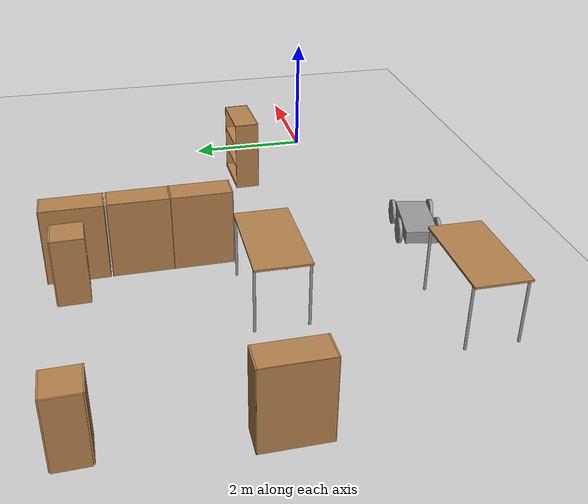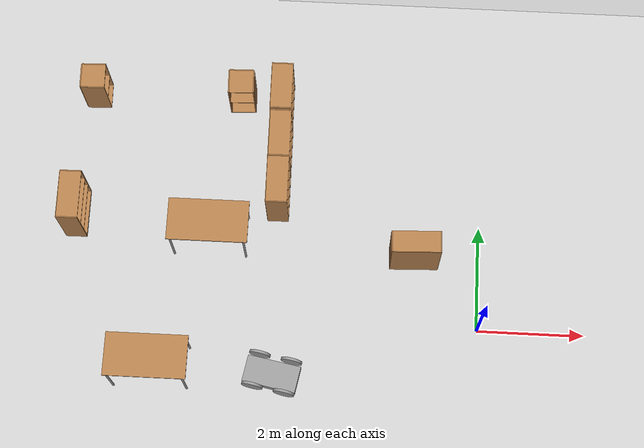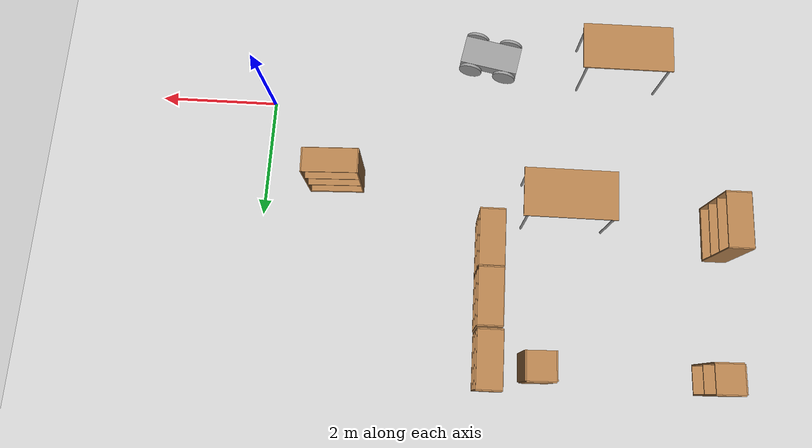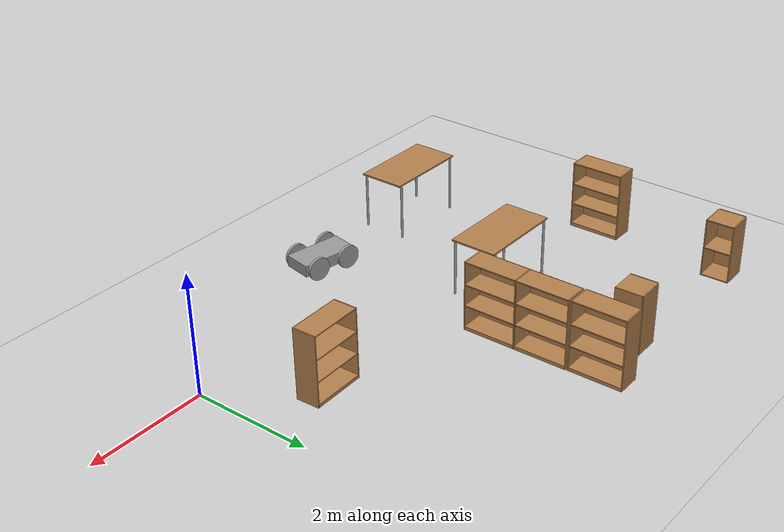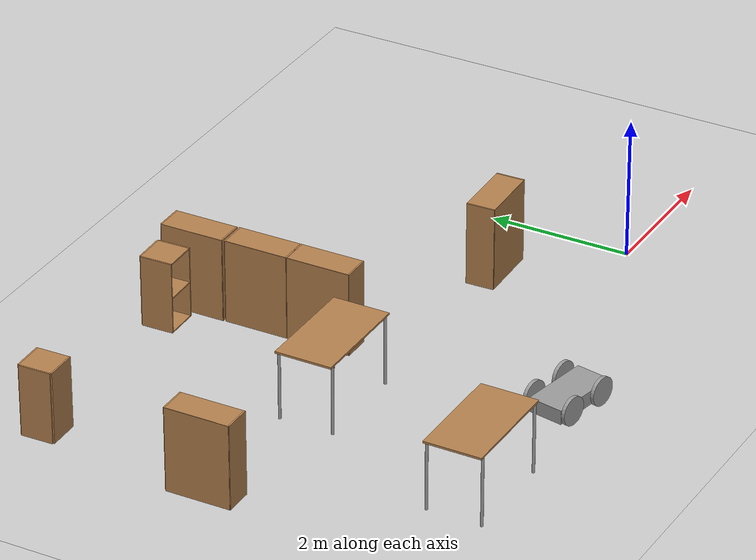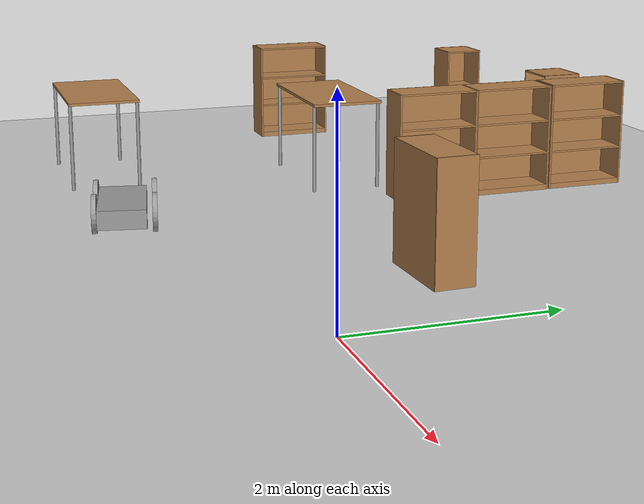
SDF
<sdf version="1.6">
 <world name="default">
  <model name="ground_plane">
   <static>1</static>
   <link name="link">
    <collision name="collision">
     <geometry><plane><normal>0 0 1</normal><size>100 100</size></plane></geometry>
     <surface>
      <contact><collide_bitmask>65535</collide_bitmask></contact>
      <friction><ode><mu>100</mu><mu2>50</mu2></ode></friction>
     </surface>
    </collision>
    <visual name="visual">
     <cast_shadows>0</cast_shadows>
     <geometry><plane><normal>0 0 1</normal><size>100 100</size></plane></geometry>
     <material>
      <script><uri>file://media/materials/scripts/gazebo.material</uri><name>Gazebo/Grey</name></script>
     </material>
    </visual>
   </link>
  </model>
  <model name="FourWheelRobot">
   <link name="link_0">
    <pose>-0 -0 -0.015999 0 -0 0</pose>
    <inertial>
     <mass>1</mass>
     <inertia>
      <ixx>0.166667</ixx>
      <ixy>0</ixy>
      <ixz>0</ixz>
      <iyy>0.166667</iyy>
      <iyz>0</iyz>
      <izz>0.166667</izz>
     </inertia>
    </inertial>
    <visual name="visual">
     <geometry><box><size>1 0.5 0.2</size></box></geometry>
     <material>
      <lighting>1</lighting>
      <script><uri>file://media/materials/scripts/gazebo.material</uri><name>Gazebo/Grey</name></script>
      <shader type="pixel"><normal_map>__default__</normal_map></shader>
      <ambient>0.3 0.3 0.3 1</ambient>
      <diffuse>0.7 0.7 0.7 1</diffuse>
      <specular>0.01 0.01 0.01 1</specular>
      <emissive>0 0 0 1</emissive>
     </material>
    </visual>
    <collision name="collision">
     <geometry><box><size>1 0.5 0.2</size></box></geometry>
     <surface>
      <friction>
       <ode><mu>1</mu><mu2>1</mu2><fdir1>0 0 0</fdir1><slip1>0</slip1><slip2>0</slip2></ode>
       <torsional>
        <coefficient>1</coefficient>
        <patch_radius>0</patch_radius>
        <surface_radius>0</surface_radius>
        <use_patch_radius>1</use_patch_radius>
        <ode><slip>0</slip></ode>
       </torsional>
      </friction>
      <bounce><restitution_coefficient>0</restitution_coefficient><threshold>1e+06</threshold></bounce>
      <contact>
       <collide_without_contact>0</collide_without_contact>
       <collide_without_contact_bitmask>1</collide_without_contact_bitmask>
       <collide_bitmask>1</collide_bitmask>
       <ode>
        <soft_cfm>0</soft_cfm>
        <soft_erp>0.2</soft_erp>
        <kp>1e+13</kp>
        <kd>1</kd>
        <max_vel>0.01</max_vel>
        <min_depth>0</min_depth>
       </ode>
       <bullet>
        <split_impulse>1</split_impulse>
        <split_impulse_penetration_threshold>-0.01</split_impulse_penetration_threshold>
        <soft_cfm>0</soft_cfm>
        <soft_erp>0.2</soft_erp>
        <kp>1e+13</kp>
        <kd>1</kd>
       </bullet>
      </contact>
     </surface>
    </collision>
   </link>
   <link name="link_1">
    <pose>-0.299779 -0.277085 0.003993 1.5707 -0 0</pose>
    <inertial>
     <mass>1</mass>
     <inertia><ixx>0.145833</ixx><ixy>0</ixy><ixz>0</ixz><iyy>0.145833</iyy><iyz>0</iyz><izz>0.125</izz></inertia>
    </inertial>
    <visual name="visual">
     <geometry><cylinder><radius>0.2</radius><length>0.05</length></cylinder></geometry>
     <material>
      <lighting>1</lighting>
      <script><uri>file://media/materials/scripts/gazebo.material</uri><name>Gazebo/Grey</name></script>
      <shader type="pixel"><normal_map>__default__</normal_map></shader>
      <ambient>0.3 0.3 0.3 1</ambient>
      <diffuse>0.7 0.7 0.7 1</diffuse>
      <specular>0.01 0.01 0.01 1</specular>
      <emissive>0 0 0 1</emissive>
     </material>
    </visual>
    <collision name="collision">
     <geometry><cylinder><radius>0.2</radius><length>0.05</length></cylinder></geometry>
     <surface>
      <friction>
       <ode><mu>1</mu><mu2>1</mu2><fdir1>0 0 0</fdir1><slip1>0</slip1><slip2>0</slip2></ode>
       <torsional>
        <coefficient>1</coefficient>
        <patch_radius>0</patch_radius>
        <surface_radius>0</surface_radius>
        <use_patch_radius>1</use_patch_radius>
        <ode><slip>0</slip></ode>
       </torsional>
      </friction>
      <bounce><restitution_coefficient>0</restitution_coefficient><threshold>1e+06</threshold></bounce>
      <contact>
       <collide_without_contact>0</collide_without_contact>
       <collide_without_contact_bitmask>1</collide_without_contact_bitmask>
       <collide_bitmask>1</collide_bitmask>
       <ode>
        <soft_cfm>0</soft_cfm>
        <soft_erp>0.2</soft_erp>
        <kp>1e+13</kp>
        <kd>1</kd>
        <max_vel>0.01</max_vel>
        <min_depth>0</min_depth>
       </ode>
       <bullet>
        <split_impulse>1</split_impulse>
        <split_impulse_penetration_threshold>-0.01</split_impulse_penetration_threshold>
        <soft_cfm>0</soft_cfm>
        <soft_erp>0.2</soft_erp>
        <kp>1e+13</kp>
        <kd>1</kd>
       </bullet>
      </contact>
     </surface>
    </collision>
   </link>
   <link name="link_1_clone">
    <pose>0.301033 -0.275844 0.004001 1.5707 -0 0</pose>
    <inertial>
     <mass>1</mass>
     <inertia><ixx>0.145833</ixx><ixy>0</ixy><ixz>0</ixz><iyy>0.145833</iyy><iyz>0</iyz><izz>0.125</izz></inertia>
    </inertial>
    <visual name="visual">
     <geometry><cylinder><radius>0.2</radius><length>0.05</length></cylinder></geometry>
     <material>
      <lighting>1</lighting>
      <script><uri>file://media/materials/scripts/gazebo.material</uri><name>Gazebo/Grey</name></script>
      <shader type="pixel"><normal_map>__default__</normal_map></shader>
      <ambient>0.3 0.3 0.3 1</ambient>
      <diffuse>0.7 0.7 0.7 1</diffuse>
      <specular>0.01 0.01 0.01 1</specular>
      <emissive>0 0 0 1</emissive>
     </material>
    </visual>
    <collision name="collision">
     <geometry><cylinder><radius>0.2</radius><length>0.05</length></cylinder></geometry>
     <surface>
      <friction>
       <ode><mu>1</mu><mu2>1</mu2><fdir1>0 0 0</fdir1><slip1>0</slip1><slip2>0</slip2></ode>
       <torsional>
        <coefficient>1</coefficient>
        <patch_radius>0</patch_radius>
        <surface_radius>0</surface_radius>
        <use_patch_radius>1</use_patch_radius>
        <ode><slip>0</slip></ode>
       </torsional>
      </friction>
      <bounce><restitution_coefficient>0</restitution_coefficient><threshold>1e+06</threshold></bounce>
      <contact>
       <collide_without_contact>0</collide_without_contact>
       <collide_without_contact_bitmask>1</collide_without_contact_bitmask>
       <collide_bitmask>1</collide_bitmask>
       <ode>
        <soft_cfm>0</soft_cfm>
        <soft_erp>0.2</soft_erp>
        <kp>1e+13</kp>
        <kd>1</kd>
        <max_vel>0.01</max_vel>
        <min_depth>0</min_depth>
       </ode>
       <bullet>
        <split_impulse>1</split_impulse>
        <split_impulse_penetration_threshold>-0.01</split_impulse_penetration_threshold>
        <soft_cfm>0</soft_cfm>
        <soft_erp>0.2</soft_erp>
        <kp>1e+13</kp>
        <kd>1</kd>
       </bullet>
      </contact>
     </surface>
    </collision>
   </link>
   <link name="link_1_clone_0">
    <pose>-0.301033 0.330349 0.003996 1.5707 -0 0</pose>
    <inertial>
     <mass>1</mass>
     <inertia><ixx>0.145833</ixx><ixy>0</ixy><ixz>0</ixz><iyy>0.145833</iyy><iyz>0</iyz><izz>0.125</izz></inertia>
    </inertial>
    <visual name="visual">
     <geometry><cylinder><radius>0.2</radius><length>0.05</length></cylinder></geometry>
     <material>
      <lighting>1</lighting>
      <script><uri>file://media/materials/scripts/gazebo.material</uri><name>Gazebo/Grey</name></script>
      <shader type="pixel"><normal_map>__default__</normal_map></shader>
      <ambient>0.3 0.3 0.3 1</ambient>
      <diffuse>0.7 0.7 0.7 1</diffuse>
      <specular>0.01 0.01 0.01 1</specular>
      <emissive>0 0 0 1</emissive>
     </material>
    </visual>
    <collision name="collision">
     <geometry><cylinder><radius>0.2</radius><length>0.05</length></cylinder></geometry>
     <surface>
      <friction>
       <ode><mu>1</mu><mu2>1</mu2><fdir1>0 0 0</fdir1><slip1>0</slip1><slip2>0</slip2></ode>
       <torsional>
        <coefficient>1</coefficient>
        <patch_radius>0</patch_radius>
        <surface_radius>0</surface_radius>
        <use_patch_radius>1</use_patch_radius>
        <ode><slip>0</slip></ode>
       </torsional>
      </friction>
      <bounce><restitution_coefficient>0</restitution_coefficient><threshold>1e+06</threshold></bounce>
      <contact>
       <collide_without_contact>0</collide_without_contact>
       <collide_without_contact_bitmask>1</collide_without_contact_bitmask>
       <collide_bitmask>1</collide_bitmask>
       <ode>
        <soft_cfm>0</soft_cfm>
        <soft_erp>0.2</soft_erp>
        <kp>1e+13</kp>
        <kd>1</kd>
        <max_vel>0.01</max_vel>
        <min_depth>0</min_depth>
       </ode>
       <bullet>
        <split_impulse>1</split_impulse>
        <split_impulse_penetration_threshold>-0.01</split_impulse_penetration_threshold>
        <soft_cfm>0</soft_cfm>
        <soft_erp>0.2</soft_erp>
        <kp>1e+13</kp>
        <kd>1</kd>
       </bullet>
      </contact>
     </surface>
    </collision>
   </link>
   <link name="link_1_clone_1">
    <pose>0.299779 0.331589 0.004003 1.5707 -0 0</pose>
    <inertial>
     <mass>1</mass>
     <inertia><ixx>0.145833</ixx><ixy>0</ixy><ixz>0</ixz><iyy>0.145833</iyy><iyz>0</iyz><izz>0.125</izz></inertia>
    </inertial>
    <visual name="visual">
     <geometry><cylinder><radius>0.2</radius><length>0.05</length></cylinder></geometry>
     <material>
      <lighting>1</lighting>
      <script><uri>file://media/materials/scripts/gazebo.material</uri><name>Gazebo/Grey</name></script>
      <shader type="pixel"><normal_map>__default__</normal_map></shader>
      <ambient>0.3 0.3 0.3 1</ambient>
      <diffuse>0.7 0.7 0.7 1</diffuse>
      <specular>0.01 0.01 0.01 1</specular>
      <emissive>0 0 0 1</emissive>
     </material>
    </visual>
    <collision name="collision">
     <geometry><cylinder><radius>0.2</radius><length>0.05</length></cylinder></geometry>
     <surface>
      <friction>
       <ode><mu>1</mu><mu2>1</mu2><fdir1>0 0 0</fdir1><slip1>0</slip1><slip2>0</slip2></ode>
       <torsional>
        <coefficient>1</coefficient>
        <patch_radius>0</patch_radius>
        <surface_radius>0</surface_radius>
        <use_patch_radius>1</use_patch_radius>
        <ode><slip>0</slip></ode>
       </torsional>
      </friction>
      <bounce><restitution_coefficient>0</restitution_coefficient><threshold>1e+06</threshold></bounce>
      <contact>
       <collide_without_contact>0</collide_without_contact>
       <collide_without_contact_bitmask>1</collide_without_contact_bitmask>
       <collide_bitmask>1</collide_bitmask>
       <ode>
        <soft_cfm>0</soft_cfm>
        <soft_erp>0.2</soft_erp>
        <kp>1e+13</kp>
        <kd>1</kd>
        <max_vel>0.01</max_vel>
        <min_depth>0</min_depth>
       </ode>
       <bullet>
        <split_impulse>1</split_impulse>
        <split_impulse_penetration_threshold>-0.01</split_impulse_penetration_threshold>
        <soft_cfm>0</soft_cfm>
        <soft_erp>0.2</soft_erp>
        <kp>1e+13</kp>
        <kd>1</kd>
       </bullet>
      </contact>
     </surface>
    </collision>
   </link>
   <joint name="link_0_JOINT_0" type="revolute">
    <parent>link_0</parent>
    <child>link_1</child>
    <axis>
     <xyz>0 0 1</xyz>
     <use_parent_model_frame>0</use_parent_model_frame>
     <limit>
      <lower>-1.79769e+308</lower>
      <upper>1.79769e+308</upper>
      <effort>-1</effort>
      <velocity>-1</velocity>
     </limit>
     <dynamics>
      <spring_reference>0</spring_reference>
      <spring_stiffness>0</spring_stiffness>
      <damping>0</damping>
     </dynamics>
    </axis>
    <physics>
     <ode><limit><cfm>0</cfm><erp>0.2</erp></limit><suspension><cfm>0</cfm><erp>0.2</erp></suspension></ode>
    </physics>
   </joint>
   <joint name="link_0_JOINT_1" type="revolute">
    <parent>link_0</parent>
    <child>link_1_clone</child>
    <axis>
     <xyz>0 0 1</xyz>
     <use_parent_model_frame>0</use_parent_model_frame>
     <limit>
      <lower>-1.79769e+308</lower>
      <upper>1.79769e+308</upper>
      <effort>-1</effort>
      <velocity>-1</velocity>
     </limit>
     <dynamics>
      <spring_reference>0</spring_reference>
      <spring_stiffness>0</spring_stiffness>
      <damping>0</damping>
     </dynamics>
    </axis>
    <physics>
     <ode><limit><cfm>0</cfm><erp>0.2</erp></limit><suspension><cfm>0</cfm><erp>0.2</erp></suspension></ode>
    </physics>
   </joint>
   <joint name="link_0_JOINT_2" type="revolute">
    <parent>link_0</parent>
    <child>link_1_clone_0</child>
    <axis>
     <xyz>0 0 1</xyz>
     <use_parent_model_frame>0</use_parent_model_frame>
     <limit>
      <lower>-1.79769e+308</lower>
      <upper>1.79769e+308</upper>
      <effort>-1</effort>
      <velocity>-1</velocity>
     </limit>
     <dynamics>
      <spring_reference>0</spring_reference>
      <spring_stiffness>0</spring_stiffness>
      <damping>0</damping>
     </dynamics>
    </axis>
    <physics>
     <ode><limit><cfm>0</cfm><erp>0.2</erp></limit><suspension><cfm>0</cfm><erp>0.2</erp></suspension></ode>
    </physics>
   </joint>
   <joint name="link_0_JOINT_3" type="revolute">
    <parent>link_0</parent>
    <child>link_1_clone_1</child>
    <axis>
     <xyz>0 0 1</xyz>
     <use_parent_model_frame>0</use_parent_model_frame>
     <limit>
      <lower>-1.79769e+308</lower>
      <upper>1.79769e+308</upper>
      <effort>-1</effort>
      <velocity>-1</velocity>
     </limit>
     <dynamics>
      <spring_reference>0</spring_reference>
      <spring_stiffness>0</spring_stiffness>
      <damping>0</damping>
     </dynamics>
    </axis>
    <physics>
     <ode><limit><cfm>0</cfm><erp>0.2</erp></limit><suspension><cfm>0</cfm><erp>0.2</erp></suspension></ode>
    </physics>
   </joint>
   <static>0</static>
   <pose>-3.7723 -1.04227 0.196004 -5e-06 1.3e-05 -0.188239</pose>
  </model>
  <model name="table">
   <static>1</static>
   <link name="link">
    <collision name="surface">
     <pose>0 0 1 0 -0 0</pose>
     <geometry><box><size>1.5 0.8 0.03</size></box></geometry>
     <surface><friction><ode><mu>0.6</mu><mu2>0.6</mu2></ode></friction></surface>
    </collision>
    <visual name="visual1">
     <pose>0 0 1 0 -0 0</pose>
     <geometry><box><size>1.5 0.8 0.03</size></box></geometry>
     <material>
      <script><uri>file://media/materials/scripts/gazebo.material</uri><name>Gazebo/Wood</name></script>
     </material>
    </visual>
    <collision name="front_left_leg">
     <pose>0.68 0.38 0.5 0 -0 0</pose>
     <geometry><cylinder><radius>0.02</radius><length>1</length></cylinder></geometry>
    </collision>
    <visual name="front_left_leg">
     <pose>0.68 0.38 0.5 0 -0 0</pose>
     <geometry><cylinder><radius>0.02</radius><length>1</length></cylinder></geometry>
     <material>
      <script><uri>file://media/materials/scripts/gazebo.material</uri><name>Gazebo/Grey</name></script>
     </material>
    </visual>
    <collision name="front_right_leg">
     <pose>0.68 -0.38 0.5 0 -0 0</pose>
     <geometry><cylinder><radius>0.02</radius><length>1</length></cylinder></geometry>
    </collision>
    <visual name="front_right_leg">
     <pose>0.68 -0.38 0.5 0 -0 0</pose>
     <geometry><cylinder><radius>0.02</radius><length>1</length></cylinder></geometry>
     <material>
      <script><uri>file://media/materials/scripts/gazebo.material</uri><name>Gazebo/Grey</name></script>
     </material>
    </visual>
    <collision name="back_right_leg">
     <pose>-0.68 -0.38 0.5 0 -0 0</pose>
     <geometry><cylinder><radius>0.02</radius><length>1</length></cylinder></geometry>
    </collision>
    <visual name="back_right_leg">
     <pose>-0.68 -0.38 0.5 0 -0 0</pose>
     <geometry><cylinder><radius>0.02</radius><length>1</length></cylinder></geometry>
     <material>
      <script><uri>file://media/materials/scripts/gazebo.material</uri><name>Gazebo/Grey</name></script>
     </material>
    </visual>
    <collision name="back_left_leg">
     <pose>-0.68 0.38 0.5 0 -0 0</pose>
     <geometry><cylinder><radius>0.02</radius><length>1</length></cylinder></geometry>
    </collision>
    <visual name="back_left_leg">
     <pose>-0.68 0.38 0.5 0 -0 0</pose>
     <geometry><cylinder><radius>0.02</radius><length>1</length></cylinder></geometry>
     <material>
      <script><uri>file://media/materials/scripts/gazebo.material</uri><name>Gazebo/Grey</name></script>
     </material>
    </visual>
   </link>
   <pose>-6.01061 -0.957315 0 0 -0 0</pose>
  </model>
  <model name="bookshelf_clone">
   <static>1</static>
   <link name="link">
    <inertial><mass>1</mass></inertial>
    <collision name="back">
     <pose>0 0.005 0.6 0 -0 0</pose>
     <geometry><box><size>0.9 0.01 1.2</size></box></geometry>
    </collision>
    <visual name="visual1">
     <pose>0 0.005 0.6 0 -0 0</pose>
     <geometry><box><size>0.9 0.01 1.2</size></box></geometry>
     <material>
      <script><uri>file://media/materials/scripts/gazebo.material</uri><name>Gazebo/Wood</name></script>
     </material>
    </visual>
    <collision name="left_side">
     <pose>0.45 -0.195 0.6 0 -0 0</pose>
     <geometry><box><size>0.02 0.4 1.2</size></box></geometry>
    </collision>
    <visual name="visual2">
     <pose>0.45 -0.195 0.6 0 -0 0</pose>
     <geometry><box><size>0.02 0.4 1.2</size></box></geometry>
     <material>
      <script><uri>file://media/materials/scripts/gazebo.material</uri><name>Gazebo/Wood</name></script>
     </material>
    </visual>
    <collision name="right_side">
     <pose>-0.45 -0.195 0.6 0 -0 0</pose>
     <geometry><box><size>0.02 0.4 1.2</size></box></geometry>
    </collision>
    <visual name="visual3">
     <pose>-0.45 -0.195 0.6 0 -0 0</pose>
     <geometry><box><size>0.02 0.4 1.2</size></box></geometry>
     <material>
      <script><uri>file://media/materials/scripts/gazebo.material</uri><name>Gazebo/Wood</name></script>
     </material>
    </visual>
    <collision name="bottom">
     <pose>0 -0.195 0.03 0 -0 0</pose>
     <geometry><box><size>0.88 0.4 0.06</size></box></geometry>
    </collision>
    <visual name="visual4">
     <pose>0 -0.195 0.03 0 -0 0</pose>
     <geometry><box><size>0.88 0.4 0.06</size></box></geometry>
     <material>
      <script><uri>file://media/materials/scripts/gazebo.material</uri><name>Gazebo/Wood</name></script>
     </material>
    </visual>
    <collision name="top">
     <pose>0 -0.195 1.19 0 -0 0</pose>
     <geometry><box><size>0.88 0.4 0.02</size></box></geometry>
    </collision>
    <visual name="visual5">
     <pose>0 -0.195 1.19 0 -0 0</pose>
     <geometry><box><size>0.88 0.4 0.02</size></box></geometry>
     <material>
      <script><uri>file://media/materials/scripts/gazebo.material</uri><name>Gazebo/Wood</name></script>
     </material>
    </visual>
    <collision name="low_shelf">
     <pose>0 -0.195 0.43 0 -0 0</pose>
     <geometry><box><size>0.88 0.4 0.02</size></box></geometry>
    </collision>
    <visual name="visual6">
     <pose>0 -0.195 0.43 0 -0 0</pose>
     <geometry><box><size>0.88 0.4 0.02</size></box></geometry>
     <material>
      <script><uri>file://media/materials/scripts/gazebo.material</uri><name>Gazebo/Wood</name></script>
     </material>
    </visual>
    <collision name="high_shelf">
     <pose>0 -0.195 0.8 0 -0 0</pose>
     <geometry><box><size>0.88 0.4 0.02</size></box></geometry>
    </collision>
    <visual name="visual7">
     <pose>0 -0.195 0.8 0 -0 0</pose>
     <geometry><box><size>0.88 0.4 0.02</size></box></geometry>
     <material>
      <script><uri>file://media/materials/scripts/gazebo.material</uri><name>Gazebo/Wood</name></script>
     </material>
    </visual>
   </link>
   <pose>-4.05861 4.28854 0 0 -0 1.57948</pose>
  </model>
  <model name="cabinet_clone">
   <static>1</static>
   <link name="cabinet_bottom_plate">
    <inertial>
     <pose>0 0 -1 0 -0 0</pose>
     <inertia><ixx>2.05</ixx><ixy>0</ixy><ixz>0</ixz><iyy>2.05</iyy><iyz>0</iyz><izz>2.05</izz></inertia>
     <mass>25</mass>
    </inertial>
    <collision name="cabinet_bottom_plate_geom">
     <pose>0 0 0.01 0 -0 0</pose>
     <geometry><box><size>0.45 0.45 0.02</size></box></geometry>
    </collision>
    <visual name="cabinet_bottom_plate_geom_visual">
     <pose>0 0 0.01 0 -0 0</pose>
     <geometry><box><size>0.45 0.45 0.02</size></box></geometry>
     <material>
      <script><uri>file://media/materials/scripts/gazebo.material</uri><name>Gazebo/Wood</name></script>
     </material>
    </visual>
    <collision name="cabinet_bottom_plate_geom_cabinet_back_plate">
     <pose>0.235 0 0.51 0 -0 0</pose>
     <geometry><box><size>0.02 0.45 1.02</size></box></geometry>
    </collision>
    <visual name="cabinet_bottom_plate_geom_cabinet_back_plate_visual">
     <pose>0.235 0 0.51 0 -0 0</pose>
     <geometry><box><size>0.02 0.45 1.02</size></box></geometry>
     <material>
      <script><uri>file://media/materials/scripts/gazebo.material</uri><name>Gazebo/Wood</name></script>
     </material>
    </visual>
    <collision name="cabinet_bottom_plate_geom_cabinet_left_plate">
     <pose>0 0.235 0.51 0 -0 0</pose>
     <geometry><box><size>0.45 0.02 1.02</size></box></geometry>
    </collision>
    <visual name="cabinet_bottom_plate_geom_cabinet_left_plate_visual">
     <pose>0 0.235 0.51 0 -0 0</pose>
     <geometry><box><size>0.45 0.02 1.02</size></box></geometry>
     <material>
      <script><uri>file://media/materials/scripts/gazebo.material</uri><name>Gazebo/Wood</name></script>
     </material>
    </visual>
    <collision name="cabinet_bottom_plate_geom_cabinet_middle_plate">
     <pose>0 0 0.51 0 -0 0</pose>
     <geometry><box><size>0.45 0.45 0.02</size></box></geometry>
    </collision>
    <visual name="cabinet_bottom_plate_geom_cabinet_middle_plate_visual">
     <pose>0 0 0.51 0 -0 0</pose>
     <geometry><box><size>0.45 0.45 0.02</size></box></geometry>
     <material>
      <script><uri>file://media/materials/scripts/gazebo.material</uri><name>Gazebo/Wood</name></script>
     </material>
    </visual>
    <collision name="cabinet_bottom_plate_geom_cabinet_right_plate">
     <pose>0 -0.235 0.51 0 -0 0</pose>
     <geometry><box><size>0.45 0.02 1.02</size></box></geometry>
    </collision>
    <visual name="cabinet_bottom_plate_geom_cabinet_right_plate_visual">
     <pose>0 -0.235 0.51 0 -0 0</pose>
     <geometry><box><size>0.45 0.02 1.02</size></box></geometry>
     <material>
      <script><uri>file://media/materials/scripts/gazebo.material</uri><name>Gazebo/Wood</name></script>
     </material>
    </visual>
    <collision name="cabinet_bottom_plate_geom_cabinet_top_plate">
     <pose>0 0 1.01 0 -0 0</pose>
     <geometry><box><size>0.45 0.45 0.02</size></box></geometry>
    </collision>
    <visual name="cabinet_bottom_plate_geom_cabinet_top_plate_visual">
     <pose>0 0 1.01 0 -0 0</pose>
     <geometry><box><size>0.45 0.45 0.02</size></box></geometry>
     <material>
      <script><uri>file://media/materials/scripts/gazebo.material</uri><name>Gazebo/Wood</name></script>
     </material>
    </visual>
   </link>
   <pose>-7.45829 4.37115 0.043779 0 0 -3.11635</pose>
  </model>
  <model name="bookshelf_clone_clone">
   <static>1</static>
   <link name="link">
    <inertial><mass>1</mass></inertial>
    <collision name="back">
     <pose>0 0.005 0.6 0 -0 0</pose>
     <geometry><box><size>0.9 0.01 1.2</size></box></geometry>
    </collision>
    <visual name="visual1">
     <pose>0 0.005 0.6 0 -0 0</pose>
     <geometry><box><size>0.9 0.01 1.2</size></box></geometry>
     <material>
      <script><uri>file://media/materials/scripts/gazebo.material</uri><name>Gazebo/Wood</name></script>
     </material>
    </visual>
    <collision name="left_side">
     <pose>0.45 -0.195 0.6 0 -0 0</pose>
     <geometry><box><size>0.02 0.4 1.2</size></box></geometry>
    </collision>
    <visual name="visual2">
     <pose>0.45 -0.195 0.6 0 -0 0</pose>
     <geometry><box><size>0.02 0.4 1.2</size></box></geometry>
     <material>
      <script><uri>file://media/materials/scripts/gazebo.material</uri><name>Gazebo/Wood</name></script>
     </material>
    </visual>
    <collision name="right_side">
     <pose>-0.45 -0.195 0.6 0 -0 0</pose>
     <geometry><box><size>0.02 0.4 1.2</size></box></geometry>
    </collision>
    <visual name="visual3">
     <pose>-0.45 -0.195 0.6 0 -0 0</pose>
     <geometry><box><size>0.02 0.4 1.2</size></box></geometry>
     <material>
      <script><uri>file://media/materials/scripts/gazebo.material</uri><name>Gazebo/Wood</name></script>
     </material>
    </visual>
    <collision name="bottom">
     <pose>0 -0.195 0.03 0 -0 0</pose>
     <geometry><box><size>0.88 0.4 0.06</size></box></geometry>
    </collision>
    <visual name="visual4">
     <pose>0 -0.195 0.03 0 -0 0</pose>
     <geometry><box><size>0.88 0.4 0.06</size></box></geometry>
     <material>
      <script><uri>file://media/materials/scripts/gazebo.material</uri><name>Gazebo/Wood</name></script>
     </material>
    </visual>
    <collision name="top">
     <pose>0 -0.195 1.19 0 -0 0</pose>
     <geometry><box><size>0.88 0.4 0.02</size></box></geometry>
    </collision>
    <visual name="visual5">
     <pose>0 -0.195 1.19 0 -0 0</pose>
     <geometry><box><size>0.88 0.4 0.02</size></box></geometry>
     <material>
      <script><uri>file://media/materials/scripts/gazebo.material</uri><name>Gazebo/Wood</name></script>
     </material>
    </visual>
    <collision name="low_shelf">
     <pose>0 -0.195 0.43 0 -0 0</pose>
     <geometry><box><size>0.88 0.4 0.02</size></box></geometry>
    </collision>
    <visual name="visual6">
     <pose>0 -0.195 0.43 0 -0 0</pose>
     <geometry><box><size>0.88 0.4 0.02</size></box></geometry>
     <material>
      <script><uri>file://media/materials/scripts/gazebo.material</uri><name>Gazebo/Wood</name></script>
     </material>
    </visual>
    <collision name="high_shelf">
     <pose>0 -0.195 0.8 0 -0 0</pose>
     <geometry><box><size>0.88 0.4 0.02</size></box></geometry>
    </collision>
    <visual name="visual7">
     <pose>0 -0.195 0.8 0 -0 0</pose>
     <geometry><box><size>0.88 0.4 0.02</size></box></geometry>
     <material>
      <script><uri>file://media/materials/scripts/gazebo.material</uri><name>Gazebo/Wood</name></script>
     </material>
    </visual>
   </link>
   <pose>-4.04128 3.3463 0 0 -0 1.57948</pose>
  </model>
  <model name="bookshelf_clone_clone_0">
   <static>1</static>
   <link name="link">
    <inertial><mass>1</mass></inertial>
    <collision name="back">
     <pose>0 0.005 0.6 0 -0 0</pose>
     <geometry><box><size>0.9 0.01 1.2</size></box></geometry>
    </collision>
    <visual name="visual1">
     <pose>0 0.005 0.6 0 -0 0</pose>
     <geometry><box><size>0.9 0.01 1.2</size></box></geometry>
     <material>
      <script><uri>file://media/materials/scripts/gazebo.material</uri><name>Gazebo/Wood</name></script>
     </material>
    </visual>
    <collision name="left_side">
     <pose>0.45 -0.195 0.6 0 -0 0</pose>
     <geometry><box><size>0.02 0.4 1.2</size></box></geometry>
    </collision>
    <visual name="visual2">
     <pose>0.45 -0.195 0.6 0 -0 0</pose>
     <geometry><box><size>0.02 0.4 1.2</size></box></geometry>
     <material>
      <script><uri>file://media/materials/scripts/gazebo.material</uri><name>Gazebo/Wood</name></script>
     </material>
    </visual>
    <collision name="right_side">
     <pose>-0.45 -0.195 0.6 0 -0 0</pose>
     <geometry><box><size>0.02 0.4 1.2</size></box></geometry>
    </collision>
    <visual name="visual3">
     <pose>-0.45 -0.195 0.6 0 -0 0</pose>
     <geometry><box><size>0.02 0.4 1.2</size></box></geometry>
     <material>
      <script><uri>file://media/materials/scripts/gazebo.material</uri><name>Gazebo/Wood</name></script>
     </material>
    </visual>
    <collision name="bottom">
     <pose>0 -0.195 0.03 0 -0 0</pose>
     <geometry><box><size>0.88 0.4 0.06</size></box></geometry>
    </collision>
    <visual name="visual4">
     <pose>0 -0.195 0.03 0 -0 0</pose>
     <geometry><box><size>0.88 0.4 0.06</size></box></geometry>
     <material>
      <script><uri>file://media/materials/scripts/gazebo.material</uri><name>Gazebo/Wood</name></script>
     </material>
    </visual>
    <collision name="top">
     <pose>0 -0.195 1.19 0 -0 0</pose>
     <geometry><box><size>0.88 0.4 0.02</size></box></geometry>
    </collision>
    <visual name="visual5">
     <pose>0 -0.195 1.19 0 -0 0</pose>
     <geometry><box><size>0.88 0.4 0.02</size></box></geometry>
     <material>
      <script><uri>file://media/materials/scripts/gazebo.material</uri><name>Gazebo/Wood</name></script>
     </material>
    </visual>
    <collision name="low_shelf">
     <pose>0 -0.195 0.43 0 -0 0</pose>
     <geometry><box><size>0.88 0.4 0.02</size></box></geometry>
    </collision>
    <visual name="visual6">
     <pose>0 -0.195 0.43 0 -0 0</pose>
     <geometry><box><size>0.88 0.4 0.02</size></box></geometry>
     <material>
      <script><uri>file://media/materials/scripts/gazebo.material</uri><name>Gazebo/Wood</name></script>
     </material>
    </visual>
    <collision name="high_shelf">
     <pose>0 -0.195 0.8 0 -0 0</pose>
     <geometry><box><size>0.88 0.4 0.02</size></box></geometry>
    </collision>
    <visual name="visual7">
     <pose>0 -0.195 0.8 0 -0 0</pose>
     <geometry><box><size>0.88 0.4 0.02</size></box></geometry>
     <material>
      <script><uri>file://media/materials/scripts/gazebo.material</uri><name>Gazebo/Wood</name></script>
     </material>
    </visual>
   </link>
   <pose>-4.03287 2.43602 0 0 -0 1.57948</pose>
  </model>
  <model name="bookshelf_clone_clone_1">
   <static>1</static>
   <link name="link">
    <inertial><mass>1</mass></inertial>
    <collision name="back">
     <pose>0 0.005 0.6 0 -0 0</pose>
     <geometry><box><size>0.9 0.01 1.2</size></box></geometry>
    </collision>
    <visual name="visual1">
     <pose>0 0.005 0.6 0 -0 0</pose>
     <geometry><box><size>0.9 0.01 1.2</size></box></geometry>
     <material>
      <script><uri>file://media/materials/scripts/gazebo.material</uri><name>Gazebo/Wood</name></script>
     </material>
    </visual>
    <collision name="left_side">
     <pose>0.45 -0.195 0.6 0 -0 0</pose>
     <geometry><box><size>0.02 0.4 1.2</size></box></geometry>
    </collision>
    <visual name="visual2">
     <pose>0.45 -0.195 0.6 0 -0 0</pose>
     <geometry><box><size>0.02 0.4 1.2</size></box></geometry>
     <material>
      <script><uri>file://media/materials/scripts/gazebo.material</uri><name>Gazebo/Wood</name></script>
     </material>
    </visual>
    <collision name="right_side">
     <pose>-0.45 -0.195 0.6 0 -0 0</pose>
     <geometry><box><size>0.02 0.4 1.2</size></box></geometry>
    </collision>
    <visual name="visual3">
     <pose>-0.45 -0.195 0.6 0 -0 0</pose>
     <geometry><box><size>0.02 0.4 1.2</size></box></geometry>
     <material>
      <script><uri>file://media/materials/scripts/gazebo.material</uri><name>Gazebo/Wood</name></script>
     </material>
    </visual>
    <collision name="bottom">
     <pose>0 -0.195 0.03 0 -0 0</pose>
     <geometry><box><size>0.88 0.4 0.06</size></box></geometry>
    </collision>
    <visual name="visual4">
     <pose>0 -0.195 0.03 0 -0 0</pose>
     <geometry><box><size>0.88 0.4 0.06</size></box></geometry>
     <material>
      <script><uri>file://media/materials/scripts/gazebo.material</uri><name>Gazebo/Wood</name></script>
     </material>
    </visual>
    <collision name="top">
     <pose>0 -0.195 1.19 0 -0 0</pose>
     <geometry><box><size>0.88 0.4 0.02</size></box></geometry>
    </collision>
    <visual name="visual5">
     <pose>0 -0.195 1.19 0 -0 0</pose>
     <geometry><box><size>0.88 0.4 0.02</size></box></geometry>
     <material>
      <script><uri>file://media/materials/scripts/gazebo.material</uri><name>Gazebo/Wood</name></script>
     </material>
    </visual>
    <collision name="low_shelf">
     <pose>0 -0.195 0.43 0 -0 0</pose>
     <geometry><box><size>0.88 0.4 0.02</size></box></geometry>
    </collision>
    <visual name="visual6">
     <pose>0 -0.195 0.43 0 -0 0</pose>
     <geometry><box><size>0.88 0.4 0.02</size></box></geometry>
     <material>
      <script><uri>file://media/materials/scripts/gazebo.material</uri><name>Gazebo/Wood</name></script>
     </material>
    </visual>
    <collision name="high_shelf">
     <pose>0 -0.195 0.8 0 -0 0</pose>
     <geometry><box><size>0.88 0.4 0.02</size></box></geometry>
    </collision>
    <visual name="visual7">
     <pose>0 -0.195 0.8 0 -0 0</pose>
     <geometry><box><size>0.88 0.4 0.02</size></box></geometry>
     <material>
      <script><uri>file://media/materials/scripts/gazebo.material</uri><name>Gazebo/Wood</name></script>
     </material>
    </visual>
   </link>
   <pose>-1.21683 1.1525 0 0 0 -3.10742</pose>
  </model>
  <model name="bookshelf_clone_clone_2">
   <static>1</static>
   <link name="link">
    <inertial><mass>1</mass></inertial>
    <collision name="back">
     <pose>0 0.005 0.6 0 -0 0</pose>
     <geometry><box><size>0.9 0.01 1.2</size></box></geometry>
    </collision>
    <visual name="visual1">
     <pose>0 0.005 0.6 0 -0 0</pose>
     <geometry><box><size>0.9 0.01 1.2</size></box></geometry>
     <material>
      <script><uri>file://media/materials/scripts/gazebo.material</uri><name>Gazebo/Wood</name></script>
     </material>
    </visual>
    <collision name="left_side">
     <pose>0.45 -0.195 0.6 0 -0 0</pose>
     <geometry><box><size>0.02 0.4 1.2</size></box></geometry>
    </collision>
    <visual name="visual2">
     <pose>0.45 -0.195 0.6 0 -0 0</pose>
     <geometry><box><size>0.02 0.4 1.2</size></box></geometry>
     <material>
      <script><uri>file://media/materials/scripts/gazebo.material</uri><name>Gazebo/Wood</name></script>
     </material>
    </visual>
    <collision name="right_side">
     <pose>-0.45 -0.195 0.6 0 -0 0</pose>
     <geometry><box><size>0.02 0.4 1.2</size></box></geometry>
    </collision>
    <visual name="visual3">
     <pose>-0.45 -0.195 0.6 0 -0 0</pose>
     <geometry><box><size>0.02 0.4 1.2</size></box></geometry>
     <material>
      <script><uri>file://media/materials/scripts/gazebo.material</uri><name>Gazebo/Wood</name></script>
     </material>
    </visual>
    <collision name="bottom">
     <pose>0 -0.195 0.03 0 -0 0</pose>
     <geometry><box><size>0.88 0.4 0.06</size></box></geometry>
    </collision>
    <visual name="visual4">
     <pose>0 -0.195 0.03 0 -0 0</pose>
     <geometry><box><size>0.88 0.4 0.06</size></box></geometry>
     <material>
      <script><uri>file://media/materials/scripts/gazebo.material</uri><name>Gazebo/Wood</name></script>
     </material>
    </visual>
    <collision name="top">
     <pose>0 -0.195 1.19 0 -0 0</pose>
     <geometry><box><size>0.88 0.4 0.02</size></box></geometry>
    </collision>
    <visual name="visual5">
     <pose>0 -0.195 1.19 0 -0 0</pose>
     <geometry><box><size>0.88 0.4 0.02</size></box></geometry>
     <material>
      <script><uri>file://media/materials/scripts/gazebo.material</uri><name>Gazebo/Wood</name></script>
     </material>
    </visual>
    <collision name="low_shelf">
     <pose>0 -0.195 0.43 0 -0 0</pose>
     <geometry><box><size>0.88 0.4 0.02</size></box></geometry>
    </collision>
    <visual name="visual6">
     <pose>0 -0.195 0.43 0 -0 0</pose>
     <geometry><box><size>0.88 0.4 0.02</size></box></geometry>
     <material>
      <script><uri>file://media/materials/scripts/gazebo.material</uri><name>Gazebo/Wood</name></script>
     </material>
    </visual>
    <collision name="high_shelf">
     <pose>0 -0.195 0.8 0 -0 0</pose>
     <geometry><box><size>0.88 0.4 0.02</size></box></geometry>
    </collision>
    <visual name="visual7">
     <pose>0 -0.195 0.8 0 -0 0</pose>
     <geometry><box><size>0.88 0.4 0.02</size></box></geometry>
     <material>
      <script><uri>file://media/materials/scripts/gazebo.material</uri><name>Gazebo/Wood</name></script>
     </material>
    </visual>
   </link>
   <pose>-7.85386 1.94991 0 0 -0 1.57948</pose>
  </model>
  <model name="cabinet_clone_clone">
   <static>1</static>
   <link name="cabinet_bottom_plate">
    <inertial>
     <pose>0 0 -1 0 -0 0</pose>
     <inertia><ixx>2.05</ixx><ixy>0</ixy><ixz>0</ixz><iyy>2.05</iyy><iyz>0</iyz><izz>2.05</izz></inertia>
     <mass>25</mass>
    </inertial>
    <collision name="cabinet_bottom_plate_geom">
     <pose>0 0 0.01 0 -0 0</pose>
     <geometry><box><size>0.45 0.45 0.02</size></box></geometry>
    </collision>
    <visual name="cabinet_bottom_plate_geom_visual">
     <pose>0 0 0.01 0 -0 0</pose>
     <geometry><box><size>0.45 0.45 0.02</size></box></geometry>
     <material>
      <script><uri>file://media/materials/scripts/gazebo.material</uri><name>Gazebo/Wood</name></script>
     </material>
    </visual>
    <collision name="cabinet_bottom_plate_geom_cabinet_back_plate">
     <pose>0.235 0 0.51 0 -0 0</pose>
     <geometry><box><size>0.02 0.45 1.02</size></box></geometry>
    </collision>
    <visual name="cabinet_bottom_plate_geom_cabinet_back_plate_visual">
     <pose>0.235 0 0.51 0 -0 0</pose>
     <geometry><box><size>0.02 0.45 1.02</size></box></geometry>
     <material>
      <script><uri>file://media/materials/scripts/gazebo.material</uri><name>Gazebo/Wood</name></script>
     </material>
    </visual>
    <collision name="cabinet_bottom_plate_geom_cabinet_left_plate">
     <pose>0 0.235 0.51 0 -0 0</pose>
     <geometry><box><size>0.45 0.02 1.02</size></box></geometry>
    </collision>
    <visual name="cabinet_bottom_plate_geom_cabinet_left_plate_visual">
     <pose>0 0.235 0.51 0 -0 0</pose>
     <geometry><box><size>0.45 0.02 1.02</size></box></geometry>
     <material>
      <script><uri>file://media/materials/scripts/gazebo.material</uri><name>Gazebo/Wood</name></script>
     </material>
    </visual>
    <collision name="cabinet_bottom_plate_geom_cabinet_middle_plate">
     <pose>0 0 0.51 0 -0 0</pose>
     <geometry><box><size>0.45 0.45 0.02</size></box></geometry>
    </collision>
    <visual name="cabinet_bottom_plate_geom_cabinet_middle_plate_visual">
     <pose>0 0 0.51 0 -0 0</pose>
     <geometry><box><size>0.45 0.45 0.02</size></box></geometry>
     <material>
      <script><uri>file://media/materials/scripts/gazebo.material</uri><name>Gazebo/Wood</name></script>
     </material>
    </visual>
    <collision name="cabinet_bottom_plate_geom_cabinet_right_plate">
     <pose>0 -0.235 0.51 0 -0 0</pose>
     <geometry><box><size>0.45 0.02 1.02</size></box></geometry>
    </collision>
    <visual name="cabinet_bottom_plate_geom_cabinet_right_plate_visual">
     <pose>0 -0.235 0.51 0 -0 0</pose>
     <geometry><box><size>0.45 0.02 1.02</size></box></geometry>
     <material>
      <script><uri>file://media/materials/scripts/gazebo.material</uri><name>Gazebo/Wood</name></script>
     </material>
    </visual>
    <collision name="cabinet_bottom_plate_geom_cabinet_top_plate">
     <pose>0 0 1.01 0 -0 0</pose>
     <geometry><box><size>0.45 0.45 0.02</size></box></geometry>
    </collision>
    <visual name="cabinet_bottom_plate_geom_cabinet_top_plate_visual">
     <pose>0 0 1.01 0 -0 0</pose>
     <geometry><box><size>0.45 0.45 0.02</size></box></geometry>
     <material>
      <script><uri>file://media/materials/scripts/gazebo.material</uri><name>Gazebo/Wood</name></script>
     </material>
    </visual>
   </link>
   <pose>-4.63174 4.33833 0.15688 0 -0 1.6015</pose>
  </model>
  <model name="table_clone_0">
   <static>1</static>
   <link name="link">
    <collision name="surface">
     <pose>0 0 1 0 -0 0</pose>
     <geometry><box><size>1.5 0.8 0.03</size></box></geometry>
     <surface><friction><ode><mu>0.6</mu><mu2>0.6</mu2></ode></friction></surface>
    </collision>
    <visual name="visual1">
     <pose>0 0 1 0 -0 0</pose>
     <geometry><box><size>1.5 0.8 0.03</size></box></geometry>
     <material>
      <script><uri>file://media/materials/scripts/gazebo.material</uri><name>Gazebo/Wood</name></script>
     </material>
    </visual>
    <collision name="front_left_leg">
     <pose>0.68 0.38 0.5 0 -0 0</pose>
     <geometry><cylinder><radius>0.02</radius><length>1</length></cylinder></geometry>
    </collision>
    <visual name="front_left_leg">
     <pose>0.68 0.38 0.5 0 -0 0</pose>
     <geometry><cylinder><radius>0.02</radius><length>1</length></cylinder></geometry>
     <material>
      <script><uri>file://media/materials/scripts/gazebo.material</uri><name>Gazebo/Grey</name></script>
     </material>
    </visual>
    <collision name="front_right_leg">
     <pose>0.68 -0.38 0.5 0 -0 0</pose>
     <geometry><cylinder><radius>0.02</radius><length>1</length></cylinder></geometry>
    </collision>
    <visual name="front_right_leg">
     <pose>0.68 -0.38 0.5 0 -0 0</pose>
     <geometry><cylinder><radius>0.02</radius><length>1</length></cylinder></geometry>
     <material>
      <script><uri>file://media/materials/scripts/gazebo.material</uri><name>Gazebo/Grey</name></script>
     </material>
    </visual>
    <collision name="back_right_leg">
     <pose>-0.68 -0.38 0.5 0 -0 0</pose>
     <geometry><cylinder><radius>0.02</radius><length>1</length></cylinder></geometry>
    </collision>
    <visual name="back_right_leg">
     <pose>-0.68 -0.38 0.5 0 -0 0</pose>
     <geometry><cylinder><radius>0.02</radius><length>1</length></cylinder></geometry>
     <material>
      <script><uri>file://media/materials/scripts/gazebo.material</uri><name>Gazebo/Grey</name></script>
     </material>
    </visual>
    <collision name="back_left_leg">
     <pose>-0.68 0.38 0.5 0 -0 0</pose>
     <geometry><cylinder><radius>0.02</radius><length>1</length></cylinder></geometry>
    </collision>
    <visual name="back_left_leg">
     <pose>-0.68 0.38 0.5 0 -0 0</pose>
     <geometry><cylinder><radius>0.02</radius><length>1</length></cylinder></geometry>
     <material>
      <script><uri>file://media/materials/scripts/gazebo.material</uri><name>Gazebo/Grey</name></script>
     </material>
    </visual>
   </link>
   <pose>-5.08034 1.62797 0 0 -0 0</pose>
  </model>
 </world>
</sdf>
